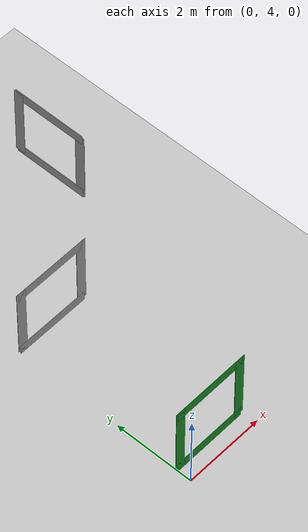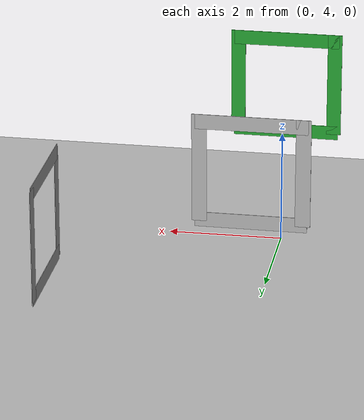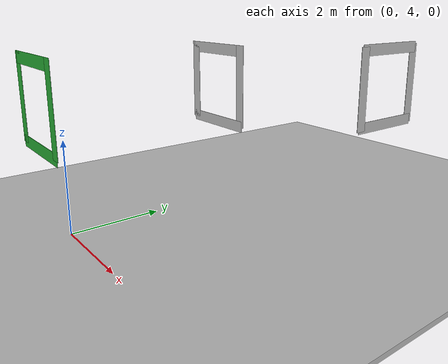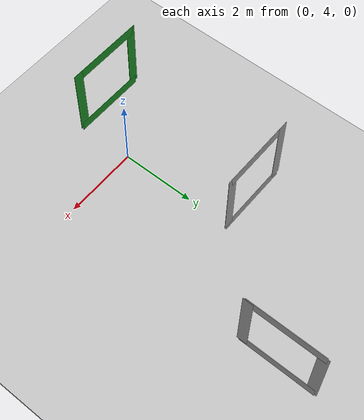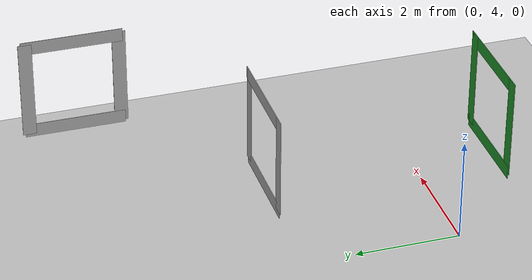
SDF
<sdf version="1.6">
 <world name="default">
  <physics type="ode">
   <ode>
    <solver><type>quick</type><iters>100</iters><sor>1.0</sor></solver>
    <constraints>
     <cfm>0.0</cfm>
     <erp>0.9</erp>
     <contact_max_correcting_vel>0.1</contact_max_correcting_vel>
     <contact_surface_layer>0.0</contact_surface_layer>
    </constraints>
   </ode>
   <real_time_update_rate>1000</real_time_update_rate>
   <max_step_size>0.0010</max_step_size>
  </physics>
  <scene>
   <sky><clouds><speed>12</speed></clouds></sky>
   <ambient>0.4 0.4 0.4 1</ambient>
   <background>0.25 0.25 0.25 1</background>
  </scene>
  <light name="sun" type="directional">
   <pose>0 0 10 0 -0 0</pose>
   <diffuse>0.8 0.8 0.8 1</diffuse>
   <specular>0.2 0.2 0.2 1</specular>
   <attenuation>
    <range>1000</range>
    <constant>0.9</constant>
    <linear>0.01</linear>
    <quadratic>0.001</quadratic>
   </attenuation>
   <direction>-0.5 0.1 -0.9</direction>
  </light>
  <model name="basketball_court">
   <pose>0.4 0 0 0 -0 1.5708</pose>
   <static>1</static>
   <link name="floor">
    <collision name="collision"><geometry><box><size>57.5 57.5 0.1</size></box></geometry></collision>
    <visual name="visual">
     <cast_shadows>0</cast_shadows>
     <geometry><box><size>57.5 57.5 0.1</size></box></geometry>
     <material>
      <script>
       <uri>model://basketball_court/materials/scripts</uri>
       <uri>model://basketball_court/materials/textures</uri>
       <name>basketball_court</name>
      </script>
     </material>
    </visual>
   </link>
  </model>
  <gravity>0 0 -9.8</gravity>
  <magnetic_field>6e-06 2.3e-05 -4.2e-05</magnetic_field>
  <atmosphere type="adiabatic"/>
  <scene><ambient>0.4 0.4 0.4 1</ambient><background>0.7 0.7 0.7 1</background><shadows>1</shadows></scene>
  <spherical_coordinates>
   <surface_model>EARTH_WGS84</surface_model>
   <latitude_deg>0</latitude_deg>
   <longitude_deg>0</longitude_deg>
   <elevation>0</elevation>
   <heading_deg>0</heading_deg>
  </spherical_coordinates>
  <model name="paper_back0">
   <pose>0 3.55 1.9 0 0 0</pose>
   <static>true</static>
   <link name="link">
    <collision name="collision"><geometry><box><size>0.1 0.01 0.1</size></box></geometry></collision>
    <visual name="visual">
     <geometry><box><size>1.85 0.01 0.25</size></box></geometry>
     <material><script><name>Gazebo/Green</name></script></material>
    </visual>
   </link>
  </model>
  <model name="paper_back1">
   <pose>0.85 3.55 2.8 0 1.57 0</pose>
   <static>true</static>
   <link name="link">
    <collision name="collision"><geometry><box><size>0.1 0.01 0.1</size></box></geometry></collision>
    <visual name="visual">
     <geometry><box><size>1.85 0.01 0.25</size></box></geometry>
     <material><script><name>Gazebo/Green</name></script></material>
    </visual>
   </link>
  </model>
  <model name="paper_back2">
   <pose>-0.85 3.55 2.8 0 1.57 0</pose>
   <static>true</static>
   <link name="link">
    <collision name="collision"><geometry><box><size>0.1 0.01 0.1</size></box></geometry></collision>
    <visual name="visual">
     <geometry><box><size>1.85 0.01 0.25</size></box></geometry>
     <material><script><name>Gazebo/Green</name></script></material>
    </visual>
   </link>
  </model>
  <model name="paper_back3">
   <pose>0 3.55 3.6 0 0 0</pose>
   <static>true</static>
   <link name="link">
    <collision name="collision"><geometry><box><size>0.1 0.01 0.1</size></box></geometry></collision>
    <visual name="visual">
     <geometry><box><size>1.85 0.01 0.25</size></box></geometry>
     <material><script><name>Gazebo/Green</name></script></material>
    </visual>
   </link>
  </model>
  <model name="paper_back0_2">
   <pose>0 7.75 1.9 0 0 0</pose>
   <static>true</static>
   <link name="link">
    <collision name="collision"><geometry><box><size>0.1 0.01 0.1</size></box></geometry></collision>
    <visual name="visual"><geometry><box><size>1.85 0.01 0.25</size></box></geometry></visual>
   </link>
  </model>
  <model name="paper_back1_2">
   <pose>0.85 7.75 2.8 0 1.57 0</pose>
   <static>true</static>
   <link name="link">
    <collision name="collision"><geometry><box><size>0.1 0.01 0.1</size></box></geometry></collision>
    <visual name="visual"><geometry><box><size>1.85 0.01 0.25</size></box></geometry></visual>
   </link>
  </model>
  <model name="paper_back2_2">
   <pose>-0.85 7.75 2.8 0 1.57 0</pose>
   <static>true</static>
   <link name="link">
    <collision name="collision"><geometry><box><size>0.1 0.01 0.1</size></box></geometry></collision>
    <visual name="visual"><geometry><box><size>1.85 0.01 0.25</size></box></geometry></visual>
   </link>
  </model>
  <model name="paper_back3_2">
   <pose>0 7.75 3.6 0 0 0</pose>
   <static>true</static>
   <link name="link">
    <collision name="collision"><geometry><box><size>0.1 0.01 0.1</size></box></geometry></collision>
    <visual name="visual"><geometry><box><size>1.85 0.01 0.25</size></box></geometry></visual>
   </link>
  </model>
  <model name="paper_back0_3">
   <pose>2.8 10.45 1.95 0 0 1.57</pose>
   <static>true</static>
   <link name="link">
    <collision name="collision"><geometry><box><size>0.1 0.01 0.1</size></box></geometry></collision>
    <visual name="visual"><geometry><box><size>1.85 0.01 0.25</size></box></geometry></visual>
   </link>
  </model>
  <model name="paper_back1_3">
   <pose>2.8 11.3 2.8 0 1.57 1.57</pose>
   <static>true</static>
   <link name="link">
    <collision name="collision"><geometry><box><size>0.1 0.01 0.1</size></box></geometry></collision>
    <visual name="visual"><geometry><box><size>1.85 0.01 0.25</size></box></geometry></visual>
   </link>
  </model>
  <model name="paper_back2_3">
   <pose>2.8 9.6 2.8 0 1.57 1.57</pose>
   <static>true</static>
   <link name="link">
    <collision name="collision"><geometry><box><size>0.1 0.01 0.1</size></box></geometry></collision>
    <visual name="visual"><geometry><box><size>1.85 0.01 0.25</size></box></geometry></visual>
   </link>
  </model>
  <model name="paper_back3_3">
   <pose>2.8 10.45 3.65 0 0 1.57</pose>
   <static>true</static>
   <link name="link">
    <collision name="collision"><geometry><box><size>0.1 0.01 0.1</size></box></geometry></collision>
    <visual name="visual"><geometry><box><size>1.85 0.01 0.25</size></box></geometry></visual>
   </link>
  </model>
 </world>
</sdf>
